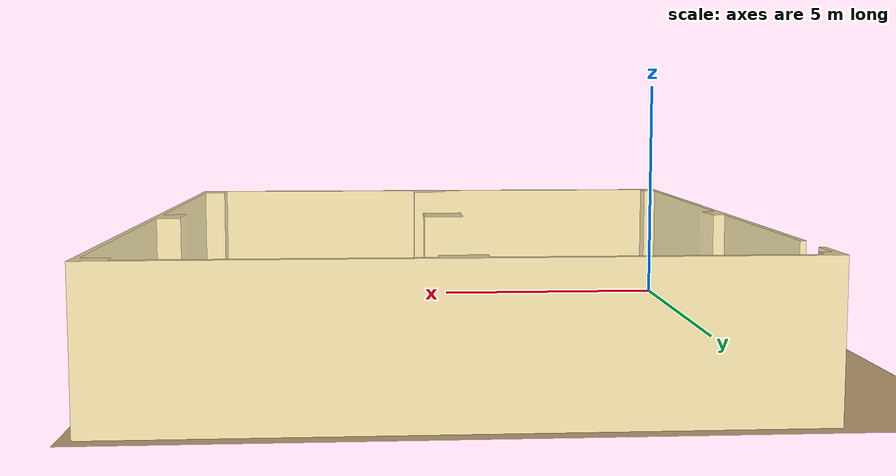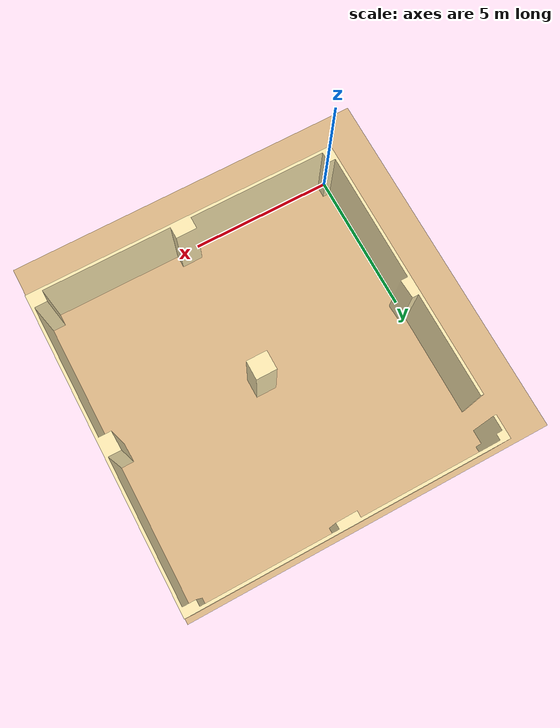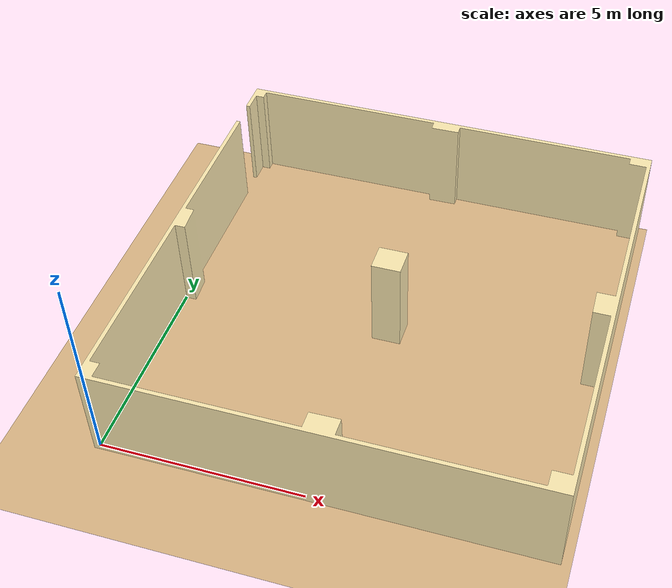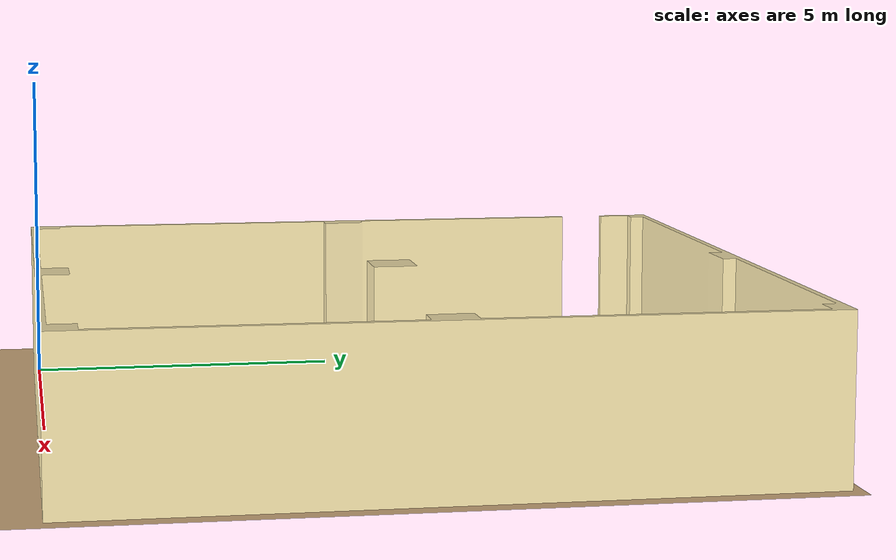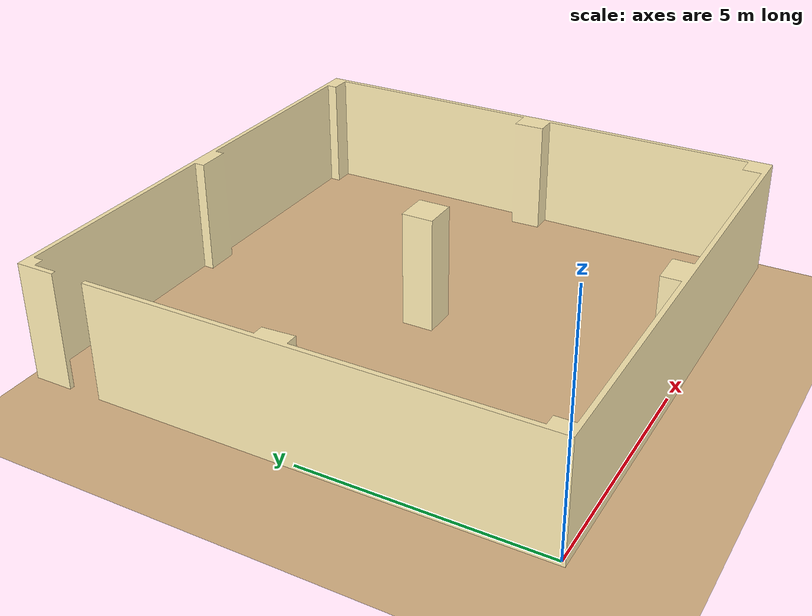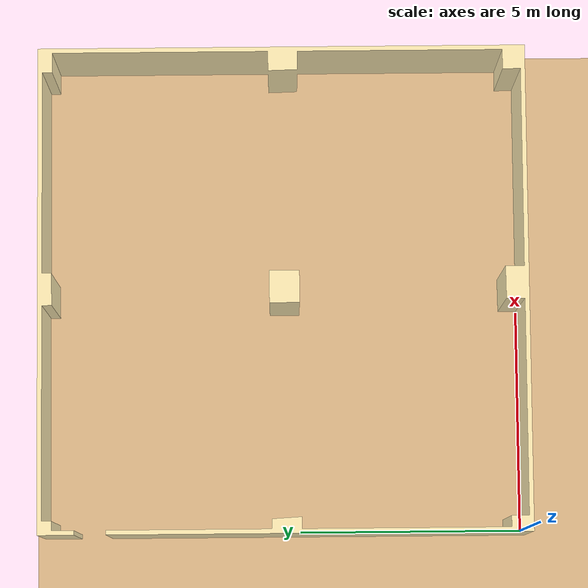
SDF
<?xml version="1.0" ?>
<sdf version="1.6">
  <model name="measurement">
    <static>true</static>
    <link name="link">
      <collision name="collision">
        <geometry>
          <mesh>
            <scale>1 1 1</scale>
            <uri>model://field/meshes/mtg_room.stl</uri>
          </mesh>
        </geometry>
        <surface>
          <friction>
            <ode>
              <mu>1.2</mu>
              <mu2>1.2</mu2>
            </ode>
          </friction>
        </surface>
      </collision>
      <visual name="visual">
        <geometry>
          <mesh>
            <scale>1 1 1</scale>
            <uri>model://field/meshes/mtg_room.stl</uri>
          </mesh>
        </geometry>
        <material>
          <ambient>0.8 0.8 0.8 1</ambient>
          <diffuse>1 0.929 0.702 1</diffuse>
          <specular>0.1 0.1 0.1 1</specular>
        </material>
      </visual>
    </link>
    <link name="floor_link">
      <!-- 床の位置（必要に応じて調整） -->
      <pose>1 1 0 0 0 0</pose>

      <collision name="floor_collision">
        <geometry>
          <plane>
            <normal>0 0 1</normal>
            <size>20 20</size> <!-- 部屋サイズに合わせる -->
          </plane>
        </geometry>
        <surface>
          <friction>
            <ode>
              <mu>1.2</mu>
              <mu2>1.2</mu2>
            </ode>
          </friction>
        </surface>
      </collision>

      <visual name="floor_visual">
        <geometry>
          <plane>
            <normal>0 0 1</normal>
            <size>20 20</size>
          </plane>
        </geometry>

        <!-- 床色 -->
        <material>
          <ambient>0.4 0.3 0.2 1</ambient>
          <diffuse>0.870588 0.721569 0.529412 1</diffuse>
          <specular>0.05 0.05 0.05 1</specular>
        </material>
      </visual>
    </link>
  </model>
</sdf>
